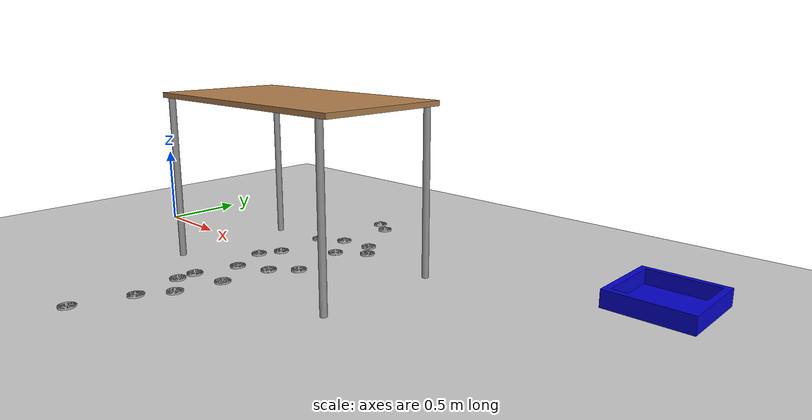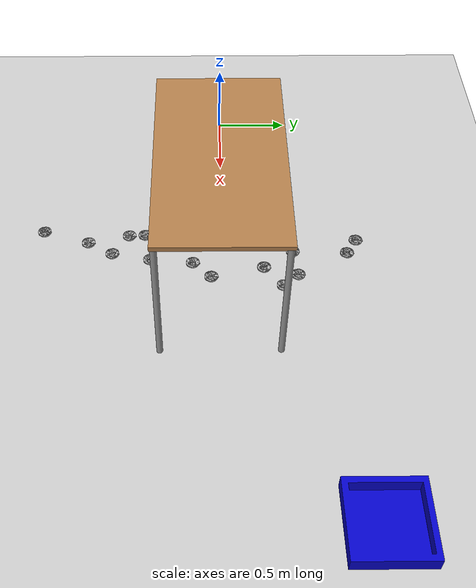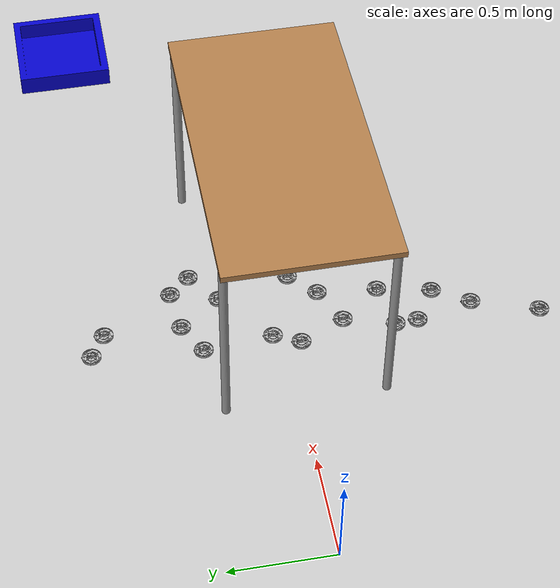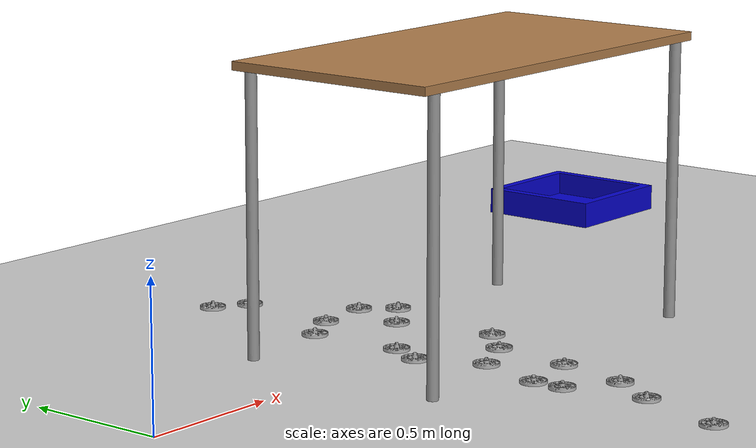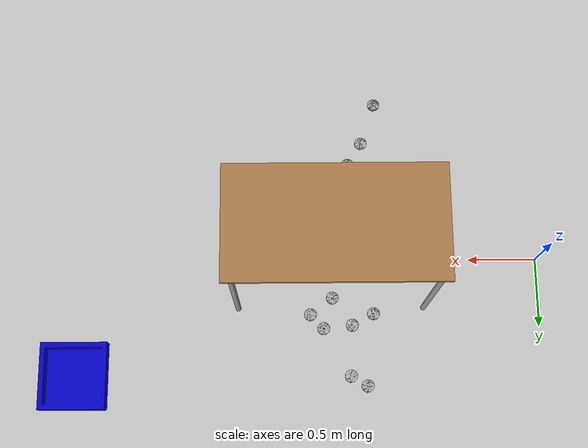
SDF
<sdf version="1.7">
 <world name="default">
  <model name="ground_plane">
   <static>1</static>
   <link name="link">
    <collision name="collision">
     <geometry><plane><normal>0 0 1</normal><size>100 100</size></plane></geometry>
     <surface>
      <contact><collide_bitmask>65535</collide_bitmask></contact>
      <friction><ode><mu>100</mu><mu2>50</mu2></ode></friction>
     </surface>
    </collision>
    <visual name="visual">
     <cast_shadows>0</cast_shadows>
     <geometry><plane><normal>0 0 1</normal><size>100 100</size></plane></geometry>
     <material>
      <script><uri>file://media/materials/scripts/gazebo.material</uri><name>Gazebo/Grey</name></script>
     </material>
    </visual>
   </link>
  </model>
  <model name="object_box">
   <pose>3.38607 0.850822 0 0 -0 0</pose>
   <static>1</static>
   <link name="object_box">
    <inertial>
     <mass>0.2</mass>
     <inertia><ixx>0.0005</ixx><ixy>0</ixy><ixz>0</ixz><iyy>0.0005</iyy><iyz>0</iyz><izz>0.0005</izz></inertia>
    </inertial>
    <collision name="collision">
     <geometry><mesh><uri>model://object_box/meshed/object_box_kai_kai.dae</uri></mesh></geometry>
    </collision>
    <visual name="visual">
     <geometry><mesh><uri>model://object_box/meshed/object_box_kai_kai.dae</uri></mesh></geometry>
    </visual>
   </link>
  </model>
  <model name="HV8_0">
   <pose>1.24141 0.059698 -1.8e-05 0.000274 0.000329 0.000559</pose>
   <static>0</static>
   <link name="HV8">
    <inertial>
     <mass>0.05</mass>
     <inertia><ixx>0.0002</ixx><ixy>0</ixy><ixz>0</ixz><iyy>0.0002</iyy><iyz>0</iyz><izz>0.0002</izz></inertia>
    </inertial>
    <collision name="collishin">
     <geometry><mesh><uri>model://HV8/meshes/HV8_1.stl</uri></mesh></geometry>
    </collision>
    <visual name="visual"><geometry><mesh><uri>model://HV8/meshes/HV8_1.stl</uri></mesh></geometry></visual>
   </link>
  </model>
  <model name="HV8_1">
   <pose>1.46885 -0.202999 3e-06 -0.000164 -2.7e-05 0.00056</pose>
   <static>0</static>
   <link name="HV8">
    <inertial>
     <mass>0.05</mass>
     <inertia><ixx>0.0002</ixx><ixy>0</ixy><ixz>0</ixz><iyy>0.0002</iyy><iyz>0</iyz><izz>0.0002</izz></inertia>
    </inertial>
    <collision name="collishin">
     <geometry><mesh><uri>model://HV8/meshes/HV8_1.stl</uri></mesh></geometry>
    </collision>
    <visual name="visual"><geometry><mesh><uri>model://HV8/meshes/HV8_1.stl</uri></mesh></geometry></visual>
   </link>
  </model>
  <model name="HV8_5">
   <pose>1.21287 0.399641 3e-06 -0.000164 -2.7e-05 0.000721</pose>
   <static>0</static>
   <link name="HV8">
    <inertial>
     <mass>0.05</mass>
     <inertia><ixx>0.0002</ixx><ixy>0</ixy><ixz>0</ixz><iyy>0.0002</iyy><iyz>0</iyz><izz>0.0002</izz></inertia>
    </inertial>
    <collision name="collishin">
     <geometry><mesh><uri>model://HV8/meshes/HV8_1.stl</uri></mesh></geometry>
    </collision>
    <visual name="visual"><geometry><mesh><uri>model://HV8/meshes/HV8_1.stl</uri></mesh></geometry></visual>
   </link>
  </model>
  <model name="HV8_7">
   <pose>1.18037 -0.067452 -1.8e-05 0.000274 0.000329 0.000556</pose>
   <static>0</static>
   <link name="HV8">
    <inertial>
     <mass>0.05</mass>
     <inertia><ixx>0.0002</ixx><ixy>0</ixy><ixz>0</ixz><iyy>0.0002</iyy><iyz>0</iyz><izz>0.0002</izz></inertia>
    </inertial>
    <collision name="collishin">
     <geometry><mesh><uri>model://HV8/meshes/HV8_1.stl</uri></mesh></geometry>
    </collision>
    <visual name="visual"><geometry><mesh><uri>model://HV8/meshes/HV8_1.stl</uri></mesh></geometry></visual>
   </link>
  </model>
  <model name="HV8_8">
   <pose>1.27985 -0.291362 3e-06 -0.000164 -2.7e-05 0.000552</pose>
   <static>0</static>
   <link name="HV8">
    <inertial>
     <mass>0.05</mass>
     <inertia><ixx>0.0002</ixx><ixy>0</ixy><ixz>0</ixz><iyy>0.0002</iyy><iyz>0</iyz><izz>0.0002</izz></inertia>
    </inertial>
    <collision name="collishin">
     <geometry><mesh><uri>model://HV8/meshes/HV8_1.stl</uri></mesh></geometry>
    </collision>
    <visual name="visual"><geometry><mesh><uri>model://HV8/meshes/HV8_1.stl</uri></mesh></geometry></visual>
   </link>
  </model>
  <model name="HV8_9">
   <pose>1.20802 -0.535907 -1.8e-05 0.000274 0.000329 0.000551</pose>
   <static>0</static>
   <link name="HV8">
    <inertial>
     <mass>0.05</mass>
     <inertia><ixx>0.0002</ixx><ixy>0</ixy><ixz>0</ixz><iyy>0.0002</iyy><iyz>0</iyz><izz>0.0002</izz></inertia>
    </inertial>
    <collision name="collishin">
     <geometry><mesh><uri>model://HV8/meshes/HV8_1.stl</uri></mesh></geometry>
    </collision>
    <visual name="visual"><geometry><mesh><uri>model://HV8/meshes/HV8_1.stl</uri></mesh></geometry></visual>
   </link>
  </model>
  <model name="HV8_15">
   <pose>1.17073 -1.24338 -3e-06 -0.000159 7.4e-05 0.000553</pose>
   <static>0</static>
   <link name="HV8">
    <inertial>
     <mass>0.05</mass>
     <inertia><ixx>0.0002</ixx><ixy>0</ixy><ixz>0</ixz><iyy>0.0002</iyy><iyz>0</iyz><izz>0.0002</izz></inertia>
    </inertial>
    <collision name="collishin">
     <geometry><mesh><uri>model://HV8/meshes/HV8_1.stl</uri></mesh></geometry>
    </collision>
    <visual name="visual"><geometry><mesh><uri>model://HV8/meshes/HV8_1.stl</uri></mesh></geometry></visual>
   </link>
  </model>
  <model name="HV8_16">
   <pose>1.27756 -0.927195 3e-06 -0.000164 -2.7e-05 0.000549</pose>
   <static>0</static>
   <link name="HV8">
    <inertial>
     <mass>0.05</mass>
     <inertia><ixx>0.0002</ixx><ixy>0</ixy><ixz>0</ixz><iyy>0.0002</iyy><iyz>0</iyz><izz>0.0002</izz></inertia>
    </inertial>
    <collision name="collishin">
     <geometry><mesh><uri>model://HV8/meshes/HV8_1.stl</uri></mesh></geometry>
    </collision>
    <visual name="visual"><geometry><mesh><uri>model://HV8/meshes/HV8_1.stl</uri></mesh></geometry></visual>
   </link>
  </model>
  <model name="HV8_17">
   <pose>1.59519 -0.078623 -1.8e-05 0.000274 0.000329 0.00055</pose>
   <static>0</static>
   <link name="HV8">
    <inertial>
     <mass>0.05</mass>
     <inertia><ixx>0.0002</ixx><ixy>0</ixy><ixz>0</ixz><iyy>0.0002</iyy><iyz>0</iyz><izz>0.0002</izz></inertia>
    </inertial>
    <collision name="collishin">
     <geometry><mesh><uri>model://HV8/meshes/HV8_1.stl</uri></mesh></geometry>
    </collision>
    <visual name="visual"><geometry><mesh><uri>model://HV8/meshes/HV8_1.stl</uri></mesh></geometry></visual>
   </link>
  </model>
  <model name="HV8_18">
   <pose>1.51377 0.280056 -3e-06 -0.000159 7.4e-05 0.000549</pose>
   <static>0</static>
   <link name="HV8">
    <inertial>
     <mass>0.05</mass>
     <inertia><ixx>0.0002</ixx><ixy>0</ixy><ixz>0</ixz><iyy>0.0002</iyy><iyz>0</iyz><izz>0.0002</izz></inertia>
    </inertial>
    <collision name="collishin">
     <geometry><mesh><uri>model://HV8/meshes/HV8_1.stl</uri></mesh></geometry>
    </collision>
    <visual name="visual"><geometry><mesh><uri>model://HV8/meshes/HV8_1.stl</uri></mesh></geometry></visual>
   </link>
  </model>
  <model name="HV8_19">
   <pose>1.38526 0.856761 3e-06 -0.000164 -2.7e-05 0.000548</pose>
   <static>0</static>
   <link name="HV8">
    <inertial>
     <mass>0.05</mass>
     <inertia><ixx>0.0002</ixx><ixy>0</ixy><ixz>0</ixz><iyy>0.0002</iyy><iyz>0</iyz><izz>0.0002</izz></inertia>
    </inertial>
    <collision name="collishin">
     <geometry><mesh><uri>model://HV8/meshes/HV8_1.stl</uri></mesh></geometry>
    </collision>
    <visual name="visual"><geometry><mesh><uri>model://HV8/meshes/HV8_1.stl</uri></mesh></geometry></visual>
   </link>
  </model>
  <model name="HV8_23">
   <pose>1.37029 0.483843 -1.8e-05 0.000274 0.000329 0.001109</pose>
   <static>0</static>
   <link name="HV8">
    <inertial>
     <mass>0.05</mass>
     <inertia><ixx>0.0002</ixx><ixy>0</ixy><ixz>0</ixz><iyy>0.0002</iyy><iyz>0</iyz><izz>0.0002</izz></inertia>
    </inertial>
    <collision name="collishin">
     <geometry><mesh><uri>model://HV8/meshes/HV8_1.stl</uri></mesh></geometry>
    </collision>
    <visual name="visual"><geometry><mesh><uri>model://HV8/meshes/HV8_1.stl</uri></mesh></geometry></visual>
   </link>
  </model>
  <model name="HV8_24">
   <pose>1.6762 0.403921 3e-06 -0.000164 -2.7e-05 0.000547</pose>
   <static>0</static>
   <link name="HV8">
    <inertial>
     <mass>0.05</mass>
     <inertia><ixx>0.0002</ixx><ixy>0</ixy><ixz>0</ixz><iyy>0.0002</iyy><iyz>0</iyz><izz>0.0002</izz></inertia>
    </inertial>
    <collision name="collishin">
     <geometry><mesh><uri>model://HV8/meshes/HV8_1.stl</uri></mesh></geometry>
    </collision>
    <visual name="visual"><geometry><mesh><uri>model://HV8/meshes/HV8_1.stl</uri></mesh></geometry></visual>
   </link>
  </model>
  <model name="HV8_25">
   <pose>1.5813 0.507603 3e-06 -0.000164 -2.7e-05 0.000548</pose>
   <static>0</static>
   <link name="HV8">
    <inertial>
     <mass>0.05</mass>
     <inertia><ixx>0.0002</ixx><ixy>0</ixy><ixz>0</ixz><iyy>0.0002</iyy><iyz>0</iyz><izz>0.0002</izz></inertia>
    </inertial>
    <collision name="collishin">
     <geometry><mesh><uri>model://HV8/meshes/HV8_1.stl</uri></mesh></geometry>
    </collision>
    <visual name="visual"><geometry><mesh><uri>model://HV8/meshes/HV8_1.stl</uri></mesh></geometry></visual>
   </link>
  </model>
  <model name="HV8_26">
   <pose>1.21282 -0.646311 -3e-06 -0.000159 7.4e-05 0.000548</pose>
   <static>0</static>
   <link name="HV8">
    <inertial>
     <mass>0.05</mass>
     <inertia><ixx>0.0002</ixx><ixy>0</ixy><ixz>0</ixz><iyy>0.0002</iyy><iyz>0</iyz><izz>0.0002</izz></inertia>
    </inertial>
    <collision name="collishin">
     <geometry><mesh><uri>model://HV8/meshes/HV8_1.stl</uri></mesh></geometry>
    </collision>
    <visual name="visual"><geometry><mesh><uri>model://HV8/meshes/HV8_1.stl</uri></mesh></geometry></visual>
   </link>
  </model>
  <model name="HV8_27">
   <pose>1.38195 -0.756156 -3e-06 -0.000159 7.4e-05 0.000547</pose>
   <static>0</static>
   <link name="HV8">
    <inertial>
     <mass>0.05</mass>
     <inertia><ixx>0.0002</ixx><ixy>0</ixy><ixz>0</ixz><iyy>0.0002</iyy><iyz>0</iyz><izz>0.0002</izz></inertia>
    </inertial>
    <collision name="collishin">
     <geometry><mesh><uri>model://HV8/meshes/HV8_1.stl</uri></mesh></geometry>
    </collision>
    <visual name="visual"><geometry><mesh><uri>model://HV8/meshes/HV8_1.stl</uri></mesh></geometry></visual>
   </link>
  </model>
  <model name="HV8_28">
   <pose>1.43786 -0.494465 -2.5e-05 -0.000347 0.000837 0.002577</pose>
   <static>0</static>
   <link name="HV8">
    <inertial>
     <mass>0.05</mass>
     <inertia><ixx>0.0002</ixx><ixy>0</ixy><ixz>0</ixz><iyy>0.0002</iyy><iyz>0</iyz><izz>0.0002</izz></inertia>
    </inertial>
    <collision name="collishin">
     <geometry><mesh><uri>model://HV8/meshes/HV8_1.stl</uri></mesh></geometry>
    </collision>
    <visual name="visual"><geometry><mesh><uri>model://HV8/meshes/HV8_1.stl</uri></mesh></geometry></visual>
   </link>
  </model>
  <model name="HV8_31">
   <pose>1.26627 0.929172 3e-06 -0.000164 -2.7e-05 0.000551</pose>
   <static>0</static>
   <link name="HV8">
    <inertial>
     <mass>0.05</mass>
     <inertia><ixx>0.0002</ixx><ixy>0</ixy><ixz>0</ixz><iyy>0.0002</iyy><iyz>0</iyz><izz>0.0002</izz></inertia>
    </inertial>
    <collision name="collishin">
     <geometry><mesh><uri>model://HV8/meshes/HV8_1.stl</uri></mesh></geometry>
    </collision>
    <visual name="visual"><geometry><mesh><uri>model://HV8/meshes/HV8_1.stl</uri></mesh></geometry></visual>
   </link>
  </model>
  <model name="table_0">
   <static>1</static>
   <link name="link">
    <collision name="surface">
     <pose>0 0 1 0 -0 0</pose>
     <geometry><box><size>1.5 0.8 0.03</size></box></geometry>
     <surface><friction><ode><mu>0.6</mu><mu2>0.6</mu2></ode></friction></surface>
    </collision>
    <visual name="visual1">
     <pose>0 0 1 0 -0 0</pose>
     <geometry><box><size>1.5 0.8 0.03</size></box></geometry>
     <material>
      <script><uri>file://media/materials/scripts/gazebo.material</uri><name>Gazebo/Wood</name></script>
     </material>
    </visual>
    <collision name="front_left_leg">
     <pose>0.68 0.38 0.5 0 -0 0</pose>
     <geometry><cylinder><radius>0.02</radius><length>1</length></cylinder></geometry>
    </collision>
    <visual name="front_left_leg">
     <pose>0.68 0.38 0.5 0 -0 0</pose>
     <geometry><cylinder><radius>0.02</radius><length>1</length></cylinder></geometry>
     <material>
      <script><uri>file://media/materials/scripts/gazebo.material</uri><name>Gazebo/Grey</name></script>
     </material>
    </visual>
    <collision name="front_right_leg">
     <pose>0.68 -0.38 0.5 0 -0 0</pose>
     <geometry><cylinder><radius>0.02</radius><length>1</length></cylinder></geometry>
    </collision>
    <visual name="front_right_leg">
     <pose>0.68 -0.38 0.5 0 -0 0</pose>
     <geometry><cylinder><radius>0.02</radius><length>1</length></cylinder></geometry>
     <material>
      <script><uri>file://media/materials/scripts/gazebo.material</uri><name>Gazebo/Grey</name></script>
     </material>
    </visual>
    <collision name="back_right_leg">
     <pose>-0.68 -0.38 0.5 0 -0 0</pose>
     <geometry><cylinder><radius>0.02</radius><length>1</length></cylinder></geometry>
    </collision>
    <visual name="back_right_leg">
     <pose>-0.68 -0.38 0.5 0 -0 0</pose>
     <geometry><cylinder><radius>0.02</radius><length>1</length></cylinder></geometry>
     <material>
      <script><uri>file://media/materials/scripts/gazebo.material</uri><name>Gazebo/Grey</name></script>
     </material>
    </visual>
    <collision name="back_left_leg">
     <pose>-0.68 0.38 0.5 0 -0 0</pose>
     <geometry><cylinder><radius>0.02</radius><length>1</length></cylinder></geometry>
    </collision>
    <visual name="back_left_leg">
     <pose>-0.68 0.38 0.5 0 -0 0</pose>
     <geometry><cylinder><radius>0.02</radius><length>1</length></cylinder></geometry>
     <material>
      <script><uri>file://media/materials/scripts/gazebo.material</uri><name>Gazebo/Grey</name></script>
     </material>
    </visual>
   </link>
   <pose>1.52542 -0.025656 0 0 -0 0</pose>
  </model>
 </world>
</sdf>
